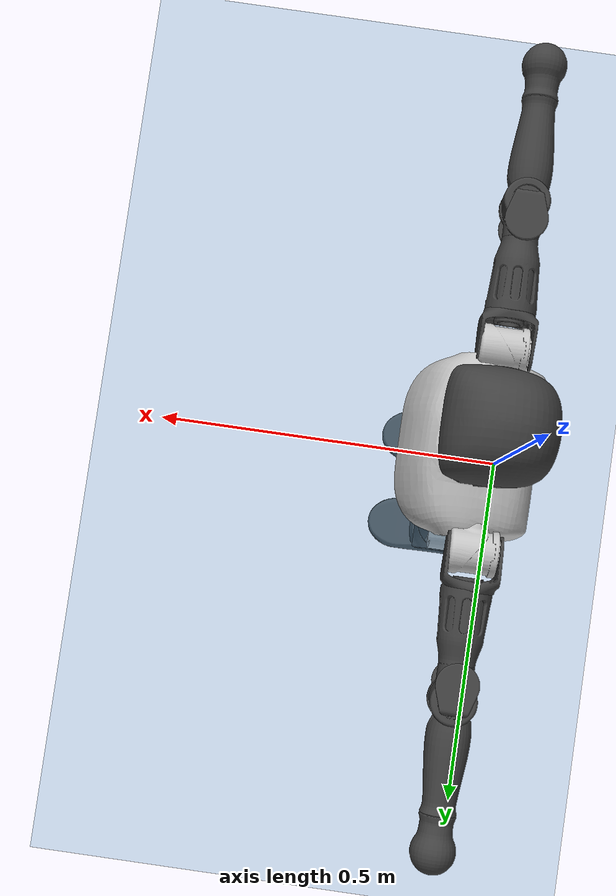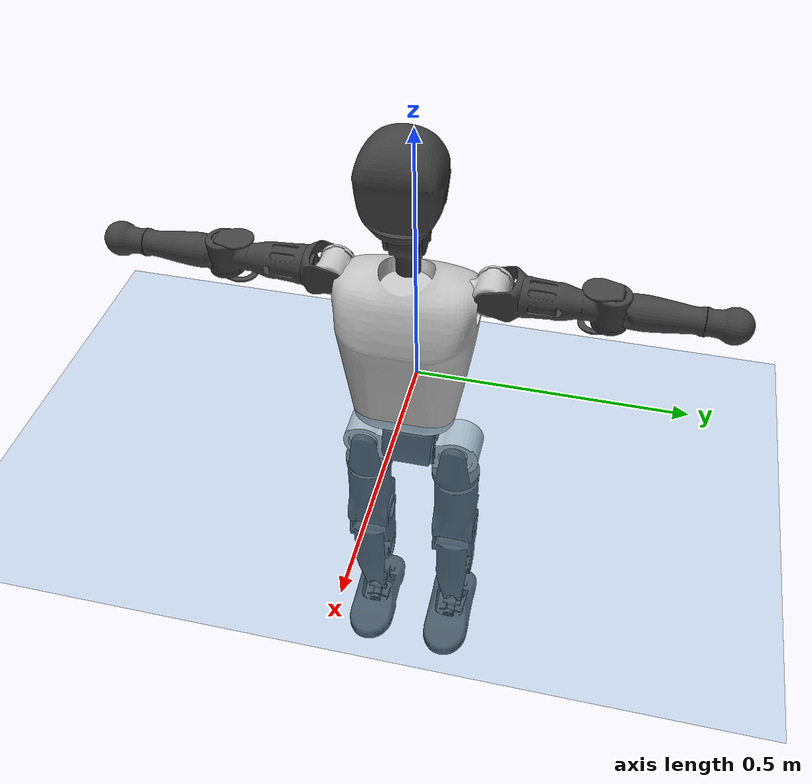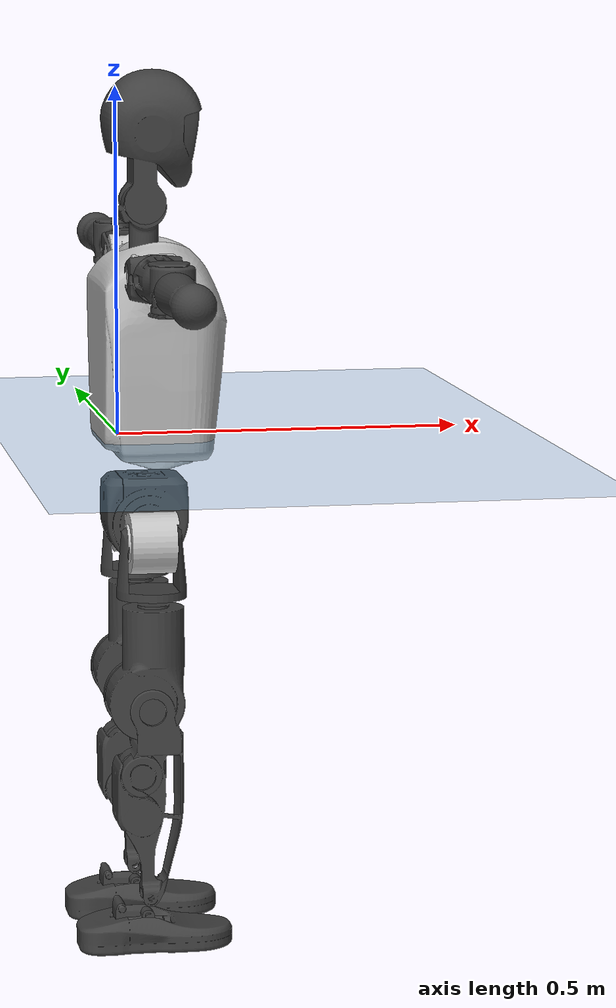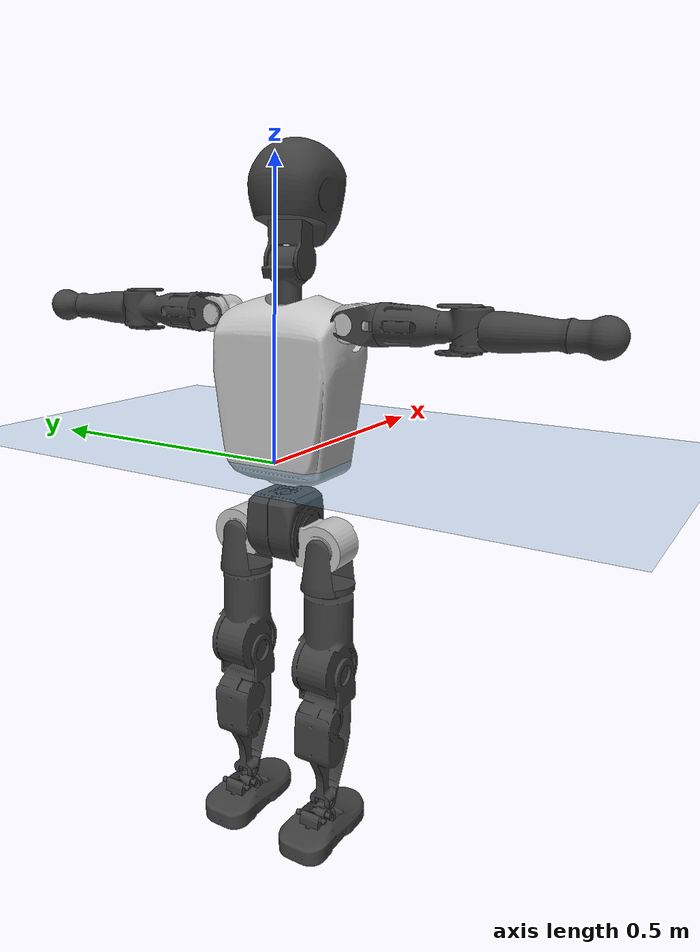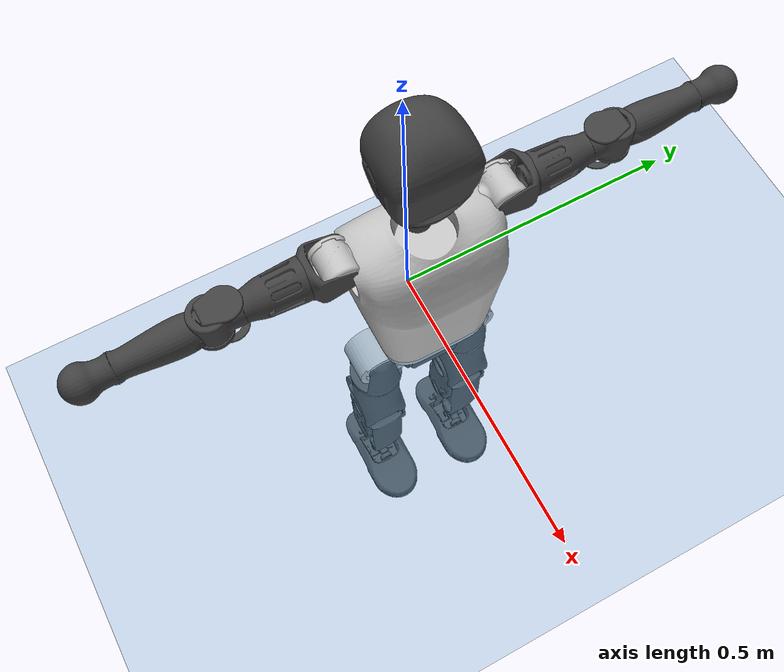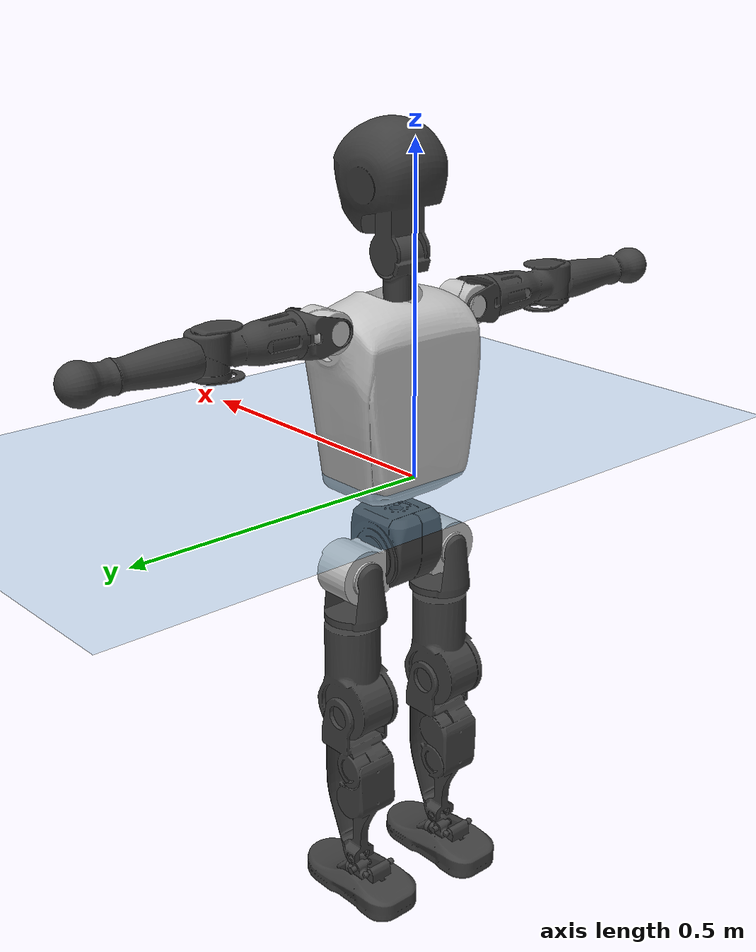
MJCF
<mujoco model="T1">
  <compiler angle="radian" assetdir="assets" balanceinertia="true" inertiafromgeom="false"/>

  <option timestep="0.005" density="1.2" viscosity="2e-05"/>

  <size nkey="1"/>

  <visual>
    <quality shadowsize="8192"/>
    <map shadowclip="0.5"/>
  </visual>

  <default>
    <default class="/">
      <joint armature="0.01" damping="0.01" frictionloss="0.1"/>
      <geom contype="0" conaffinity="0" group="1" solref="-1000 -80"/>
      <site size="0.01 0.005 0.005" group="5"/>
      <general forcelimited="true" biastype="affine" gainprm="25" biasprm="0 -25 -0.6"/>
      <default class="t1">
        <geom rgba="0.25 0.25 0.25 1"/>
        <default class="visual">
          <geom type="mesh" group="2"/>
        </default>
        <default class="collision">
          <geom group="3"/>
        </default>
        <default class="foot">
          <geom size="0.1115 0.05 0.015" type="box" condim="6" group="4" priority="1" solimp="0.015 1 0.015"/>
        </default>
        <default class="reward_collision_sphere">
          <geom group="5" rgba="1 0 0 1"/>
        </default>
      </default>
    </default>
  </default>

  <asset>
    <texture type="skybox" colorspace="auto" name="//unnamed_texture_0" builtin="gradient" rgb1="0.95 0.95 0.95" rgb2="0.95 0.95 0.95" width="100" height="600"/>
    <texture type="2d" colorspace="auto" name="texplane" builtin="checker" rgb1="0.345 0.575 0.748" rgb2="0.345 0.575 0.748" markrgb="1 1 1" width="512" height="512"/>
    <material name="MatPlane" class="/" texture="texplane" texuniform="true" texrepeat="2 2" specular="0.9"/>
    <mesh name="Trunk" class="/" file="Trunk.stl"/>
    <mesh name="H1" class="/" file="H1.stl"/>
    <mesh name="H2" class="/" file="H2.stl"/>
    <mesh name="AL1" class="/" file="AL1.stl"/>
    <mesh name="AL2" class="/" file="AL2.stl"/>
    <mesh name="AL3" class="/" file="AL3.stl"/>
    <mesh name="left_hand_link" class="/" file="left_hand_link.stl"/>
    <mesh name="AR1" class="/" file="AR1.stl"/>
    <mesh name="AR2" class="/" file="AR2.stl"/>
    <mesh name="AR3" class="/" file="AR3.stl"/>
    <mesh name="right_hand_link" class="/" file="right_hand_link.stl"/>
    <mesh name="Waist" class="/" file="Waist.stl"/>
    <mesh name="Hip_Pitch_Left" class="/" file="Hip_Pitch_Left.stl"/>
    <mesh name="Hip_Roll_Left" class="/" file="Hip_Roll_Left.stl"/>
    <mesh name="Hip_Yaw_Left" class="/" file="Hip_Yaw_Left.stl"/>
    <mesh name="Shank_Left" class="/" file="Shank_Left.stl"/>
    <mesh name="Ankle_Cross_Left" class="/" file="Ankle_Cross_Left.stl"/>
    <mesh name="left_foot_link" class="/" file="left_foot_link.stl"/>
    <mesh name="Hip_Pitch_Right" class="/" file="Hip_Pitch_Right.stl"/>
    <mesh name="Hip_Roll_Right" class="/" file="Hip_Roll_Right.stl"/>
    <mesh name="Hip_Yaw_Right" class="/" file="Hip_Yaw_Right.stl"/>
    <mesh name="Shank_Right" class="/" file="Shank_Right.stl"/>
    <mesh name="Ankle_Cross_Right" class="/" file="Ankle_Cross_Right.stl"/>
    <mesh name="right_foot_link" class="/" file="right_foot_link.stl"/>
  </asset>

  <worldbody>
    <geom name="floor" class="/" size="100 100 0.125" type="plane" group="0" material="MatPlane"/>
    <light name="toplight_shadow" class="/" pos="0 0 5" dir="0.0990148 0.0990148 -0.990148" type="directional" ambient="0.04 0.04 0.04" diffuse="0.55 0.55 0.55" specular="0.12 0.12 0.12"/>
    <light name="toplight_fill" class="/" pos="0 0 5" dir="0.0990148 0.0990148 -0.990148" type="directional" castshadow="false" ambient="0.04 0.04 0.04" diffuse="0.3 0.3 0.3" specular="0.08 0.08 0.08"/>
    <body name="trunk" childclass="t1" pos="-0.000726151 -0.000675132 0.00210604" quat="0.999999 -0.00099784 0.000164227 0.000886333">
      <inertial pos="0.0333758 -0.00196725 0.118326" quat="0.999957 -0.000116639 -0.00922692 0.000289007" mass="7.40025" diaginertia="0.0116305 0.030981 0.0936192"/>
      <joint name="//unnamed_joint_0" type="free" armature="0" damping="0" frictionloss="0"/>
      <geom name="//unnamed_geom_1" class="visual" rgba="0.76 0.76 0.76 1" mesh="Trunk"/>
      <geom name="//unnamed_geom_2" class="collision" size="0.0648481 0.0864642 0.129696" pos="0.0394279 0 0.132127" type="box"/>
      <geom name="//unnamed_geom_3" class="reward_collision_sphere" size="0.0994338" pos="0.0394279 0 0.110106"/>
      <geom name="//unnamed_geom_4" class="reward_collision_sphere" size="0.0129696" pos="0.0394279 0.0710375 0"/>
      <geom name="//unnamed_geom_5" class="reward_collision_sphere" size="0.0129696" pos="0.0394279 -0.0710375 0"/>
      <geom name="//unnamed_geom_6" class="reward_collision_sphere" size="0.0129696" pos="0.0394279 0.0894237 0.19819"/>
      <geom name="//unnamed_geom_7" class="reward_collision_sphere" size="0.0129696" pos="0.0394279 -0.0894237 0.19819"/>
      <site name="imu" pos="0.00238489 -0.0038991 0.00151922" size="0.00864642"/>
      <camera name="track" pos="0 -1.67147 0" quat="0.707107 0.707107 0 0" mode="trackcom"/>
      <camera name="ego_camera" pos="0.0801701 0 0.462444" quat="-0.5 -0.5 0.5 0.5"/>
      <body name="H1" pos="0.0405164 -0.00190822 0.264886" quat="1 -5.0148e-05 3.62685e-05 -2.98602e-05">
        <inertial pos="-0.000877138 -0.00161257 0.0657754" quat="0.766801 -0.0124536 0.00144797 0.641763" mass="0.284568" diaginertia="2.92788e-05 9.46052e-05 0.000244107"/>
        <joint name="AAHead_yaw" pos="0 0 0" axis="-0.0110559 0.00462591 0.999928" range="-1.55015 1.59179" armature="0.0084283" damping="0.00654353" frictionloss="0.0835338"/>
        <geom name="//unnamed_geom_8" class="visual" mesh="H1"/>
        <body name="H2" pos="-0.00191939 -0.00253542 0.0685411" quat="0.999999 -0.000111851 0.000653797 0.0011627">
          <inertial pos="0.00582717 0.000911157 0.109231" quat="0.988566 0.101845 -0.0742669 -0.0827594" mass="0.39654" diaginertia="0.00024599 0.000791547 0.00287516"/>
          <joint name="Head_pitch" pos="0 0 0" axis="-0.00245192 -0.999954 0.00931226" stiffness="0.00585851" range="-1.24872 0.301435" armature="0.00995139" damping="0" frictionloss="0.0844331"/>
          <geom name="//unnamed_geom_9" class="visual" mesh="H2"/>
          <geom name="//unnamed_geom_10" class="collision" size="0.0691713" pos="0.00657132 0 0.121116"/>
          <geom name="//unnamed_geom_11" class="reward_collision_sphere" size="0.0778178" pos="0.0131426 0 0.110106"/>
        </body>
      </body>
      <body name="AL1" pos="0.0411011 0.0915058 0.243942" quat="0.999999 0.000327432 0.000991253 0.000517816">
        <inertial pos="-0.000679765 0.0385415 -2.4839e-05" quat="0.500529 0.497971 -0.503195 0.498288" mass="0.340142" diaginertia="0.000172376 0.000509099 0.000457151"/>
        <joint name="Left_Shoulder_Pitch" pos="0 0 0" axis="0.000172101 1 0.000146223" range="-3.25019 1.22059" armature="0.00766156" damping="0.00344368" frictionloss="0.0764306"/>
        <geom name="//unnamed_geom_12" class="visual" rgba="0.76 0.76 0.76 1" mesh="AL1"/>
        <body name="AL2" pos="-0.00141504 0.0430898 0.000329386" quat="1 9.11947e-07 -3.98632e-07 5.80289e-07">
          <inertial pos="0.00273794 0.0296619 0.000343354" quat="0.485151 0.512763 -0.487202 0.514137" mass="0.106789" diaginertia="5.04884e-05 0.00014413 0.000303019"/>
          <joint name="Left_Shoulder_Roll" pos="0 0 0" axis="-0.999969 -0.00781551 0.00130951" stiffness="0.00831008" range="-1.57753 1.73483" armature="0.00883732" damping="0" frictionloss="0.0873798"/>
          <geom name="//unnamed_geom_13" class="visual" mesh="AL2"/>
          <body name="AL3" pos="0.00239511 0.0508555 0.00015588" quat="1 -6.52349e-05 2.82977e-05 0.000172567">
            <inertial pos="0.00190597 0.0711311 -0.000263224" quat="0.704951 0.709128 0.0133627 0.00166434" mass="0.632528" diaginertia="0.00149043 0.00519098 0.00098583"/>
            <joint name="Left_Elbow_Pitch" pos="0 0 0" axis="-0.00648284 -0.999979 0.000687836" stiffness="0.00987686" range="-2.28195 2.29445" armature="0.00933771" damping="0.0256876" frictionloss="0.0784322"/>
            <geom name="//unnamed_geom_14" class="visual" mesh="AL3"/>
            <geom name="//unnamed_geom_15" class="collision" size="0.0259393 0.0648481" pos="0 0.0417868 0" quat="0.707105 0.707108 0 0" type="cylinder"/>
            <geom name="//unnamed_geom_16" class="reward_collision_sphere" size="0.0311271"/>
            <body name="left_hand_link" pos="-0.00130712 0.124715 -0.000240852" quat="0.999999 -0.000984093 0.000860634 -0.000419408">
              <inertial pos="0.000418853 0.0927542 0.00314266" quat="0.707903 0.706309 -9.80976e-05 -0.000220315" mass="0.214706" diaginertia="0.0010207 0.0033994 0.000358291"/>
              <joint name="Left_Elbow_Yaw" pos="0 0 0" axis="-0.0076739 0.00465254 0.99996" range="-2.4977 -0.00917455" armature="0.00849144" damping="0.00904712" frictionloss="0.075611"/>
              <geom name="//unnamed_geom_17" class="visual" mesh="left_hand_link"/>
              <geom name="//unnamed_geom_18" class="collision" size="0.0259393 0.0756561" pos="0 0.108646 0" quat="0.707105 0.707108 0 0" type="cylinder"/>
              <geom name="//unnamed_geom_19" class="reward_collision_sphere" size="0.0432321"/>
              <geom name="//unnamed_geom_20" class="reward_collision_sphere" size="0.0302625" pos="0 0.0919309 0"/>
              <geom name="//unnamed_geom_21" class="reward_collision_sphere" size="0.0302625" pos="0 0.179683 0"/>
            </body>
          </body>
        </body>
      </body>
      <body name="AR1" pos="0.0366622 -0.0853341 0.23964" quat="1 -5.6732e-05 0.000439367 5.84272e-05">
        <inertial pos="-0.000426773 -0.0351387 0.00176515" quat="0.500767 0.498136 -0.501069 0.500022" mass="0.350076" diaginertia="0.000159995 0.000503745 0.000465244"/>
        <joint name="Right_Shoulder_Pitch" pos="0 0 0" axis="0.000983226 -0.999997 0.00242385" range="-1.22654 3.31943" armature="0.00808528" damping="0.0098906" frictionloss="0.0782186"/>
        <geom name="//unnamed_geom_22" class="visual" rgba="0.76 0.76 0.76 1" mesh="AR1"/>
        <body name="AR2" pos="-0.00250559 -0.040932 -0.000809372" quat="0.999999 -0.00110171 0.000250509 -7.2272e-05">
          <inertial pos="0.00510542 -0.0310895 0.00299549" quat="0.511725 0.488532 -0.511311 0.487888" mass="0.103675" diaginertia="4.8808e-05 0.000141107 0.000294285"/>
          <joint name="Right_Shoulder_Roll" pos="0 0 0" axis="-0.999827 -0.0180226 0.00467757" range="-1.68588 1.55471" armature="0.00803331" damping="0.0170566" frictionloss="0.0907385"/>
          <geom name="//unnamed_geom_23" class="visual" mesh="AR2"/>
          <body name="AR3" pos="-0.00053962 -0.0523354 0.000865749" quat="1 -3.38585e-06 -4.7284e-07 -3.44535e-07">
            <inertial pos="-0.00051941 -0.0710932 0.00116433" quat="0.707652 0.706508 -0.000397207 0.00869953" mass="0.673716" diaginertia="0.00162578 0.00509053 0.00101953"/>
            <joint name="Right_Elbow_Pitch" pos="0 0 0" axis="0.00201965 0.999895 -0.0143265" stiffness="0.00917211" range="-2.22275 2.2354" armature="0.00855122" damping="0.0136357" frictionloss="0.0859591"/>
            <geom name="//unnamed_geom_24" class="visual" mesh="AR3"/>
            <geom name="//unnamed_geom_25" class="collision" size="0.0259393 0.0648481" pos="0 -0.0417868 0" quat="0.707105 0.707108 0 0" type="cylinder"/>
            <geom name="//unnamed_geom_26" class="reward_collision_sphere" size="0.0311271"/>
            <body name="right_hand_link" pos="-0.0014898 -0.122168 -0.00224826" quat="0.999999 0.000227942 -0.00112294 -0.000787773">
              <inertial pos="-0.00102057 -0.0928799 -0.000701811" quat="0.70644 0.707773 0.000305769 9.98304e-05" mass="0.206672" diaginertia="0.00103578 0.00335395 0.000343155"/>
              <joint name="Right_Elbow_Yaw" pos="0 0 0" axis="0.0062436 0.00210031 0.999978" range="0.015581 2.41944" armature="0.00885268" damping="0" frictionloss="0.0954613"/>
              <geom name="//unnamed_geom_27" class="visual" mesh="right_hand_link"/>
              <geom name="//unnamed_geom_28" class="collision" size="0.0259393 0.0756561" pos="0 -0.108646 0" quat="0.707105 0.707108 0 0" type="cylinder"/>
              <geom name="//unnamed_geom_29" class="reward_collision_sphere" size="0.0432321"/>
              <geom name="//unnamed_geom_30" class="reward_collision_sphere" size="0.0302625" pos="0 -0.0919309 0"/>
              <geom name="//unnamed_geom_31" class="reward_collision_sphere" size="0.0302625" pos="0 -0.179683 0"/>
            </body>
          </body>
        </body>
      </body>
      <body name="Waist" pos="0.0394 0.00229603 -0.127886" quat="0.999999 -0.00081854 -0.000964096 0.00105306">
        <inertial pos="0.00323047 0.00136782 0.00832841" quat="0.98368 0.000285516 -0.179911 0.00231685" mass="1.56604" diaginertia="0.000645222 0.00203462 0.00767807"/>
        <joint name="Waist" pos="0 0 0" axis="-0.00313631 -0.00399034 0.999987" stiffness="0.00191809" range="-1.5186 1.51989" armature="0.00744975" damping="0.00601795" frictionloss="0.0899603"/>
        <geom name="//unnamed_geom_32" class="visual" mesh="Waist"/>
        <body name="Hip_Pitch_Left" pos="0.00107026 0.0900062 0.00182493" quat="1 -5.44492e-05 -0.000789002 0.00039302">
          <inertial pos="-0.00112779 -0.00676227 -0.0190451" quat="0.975891 0.217802 0.0134111 0.00444349" mass="0.689791" diaginertia="0.000222289 0.00058556 0.00203418"/>
          <joint name="Left_Hip_Pitch" pos="0 0 0" axis="-0.00211558 0.99996 -0.00871048" stiffness="0.00535826" range="-1.84772 1.55547" armature="0.00795986" damping="0.0121247" frictionloss="0.0826467"/>
          <geom name="//unnamed_geom_33" class="visual" rgba="0.76 0.76 0.76 1" mesh="Hip_Pitch_Left"/>
          <body name="Hip_Roll_Left" pos="-0.00060346 -0.00322264 -0.0205021" quat="0.999999 0.000294556 0.000467237 -0.00109825">
            <inertial pos="0.00285698 -0.00292966 -0.0587927" quat="0.707366 -0.00592685 -0.00582069 0.706799" mass="0.248783" diaginertia="0.000215919 0.000633724 0.000866374"/>
            <joint name="Left_Hip_Roll" pos="0 0 0" axis="-0.999921 0.00918418 0.00862474" range="-1.56889 0.183964" armature="0.00939411" damping="0.0142092" frictionloss="0.0855999"/>
            <geom name="//unnamed_geom_34" class="visual" mesh="Hip_Roll_Left"/>
            <geom name="//unnamed_geom_35" class="reward_collision_sphere" size="0.0475553"/>
            <body name="Hip_Yaw_Left" pos="0.00261452 0.0028802 -0.0881657" quat="1 3.21288e-05 1.41291e-05 2.59481e-05">
              <inertial pos="-0.00434958 -0.00205845 -0.0984851" quat="0.698568 -0.0274272 -0.0220669 0.714678" mass="1.38487" diaginertia="0.00310222 0.0101505 0.00419068"/>
              <joint name="Left_Hip_Yaw" pos="0 0 0" axis="0.004343 0.00980257 -0.999943" stiffness="0.00879852" range="-0.986947 1.02545" armature="0.00847409" damping="0" frictionloss="0.095733"/>
              <geom name="//unnamed_geom_36" class="visual" mesh="Hip_Yaw_Left"/>
              <geom name="//unnamed_geom_37" class="collision" size="0.0432321 0.0691713" type="cylinder"/>
              <body name="Shank_Left" pos="-0.0110892 0.000153674 -0.150497" quat="1 0.000569347 -0.000458651 -9.08435e-05">
                <inertial pos="-0.00452872 -0.00198383 -0.134166" quat="0.997625 0.00155714 -0.0237247 0.0646456" mass="1.07232" diaginertia="0.00413301 0.0142029 0.00294544"/>
                <joint name="Left_Knee_Pitch" pos="0 0 0" axis="0.000793562 0.999836 0.0180774" range="0.0203951 2.3263" armature="0.00938231" damping="0" frictionloss="0.0858097"/>
                <geom name="//unnamed_geom_38" class="visual" mesh="Shank_Left"/>
                <geom name="//unnamed_geom_39" class="collision" size="0.0432321 0.0648481" pos="0 0 -0.132127" type="cylinder"/>
                <geom name="//unnamed_geom_40" class="reward_collision_sphere" size="0.0562017"/>
                <body name="Ankle_Cross_Left" pos="0.00229088 -0.00191441 -0.309224" quat="0.999999 -0.00123 0.000751931 0.000239315">
                  <inertial pos="-0.00270619 -0.000834938 -0.00628446" quat="0.443966 0.54588 0.556621 0.441681" mass="0.0469844" diaginertia="3.70995e-06 1.0744e-05 1.88137e-05"/>
                  <joint name="Left_Ankle_Pitch" pos="0 0 0" axis="-0.00500379 0.999986 -0.00189205" range="-0.853855 0.338019" armature="0.00968271" damping="0.0179909" frictionloss="0.0968803"/>
                  <geom name="//unnamed_geom_41" class="visual" mesh="Ankle_Cross_Left"/>
                  <body name="left_foot_link" pos="-0.0027472 -0.00301412 -0.0135273" quat="1 0.00015053 -5.14237e-05 0.000337106">
                    <inertial pos="-0.00248413 0.00234942 -0.0102253" quat="-0.00382815 0.616453 -5.33109e-06 0.787382" mass="0.428983" diaginertia="0.000310484 0.000934904 0.00337456"/>
                    <joint name="Left_Ankle_Roll" pos="0 0 0" axis="-0.999993 -0.00206324 0.00296424" range="-0.455855 0.420572" armature="0.0087499" damping="0.00906823" frictionloss="0.077074"/>
                    <geom name="//unnamed_geom_42" class="visual" mesh="left_foot_link"/>
                    <geom name="left_foot" class="foot" size="0.103647 0.0455674 0.0118489" pos="0.00657132 0 -0.0165159"/>
                    <geom name="//unnamed_geom_44" class="reward_collision_sphere" size="0.0449614" pos="0.00657132 0 -0.0165159"/>
                    <geom name="//unnamed_geom_45" class="reward_collision_sphere" size="0.0259393" pos="0.0624275 -0.0192219 -0.0165159"/>
                    <geom name="//unnamed_geom_46" class="reward_collision_sphere" size="0.0259393" pos="-0.0459992 -0.0192219 -0.0165159"/>
                    <site name="left_foot" class="foot" pos="0.00657132 0 -0.0165159" size="0.00864642"/>
                  </body>
                </body>
              </body>
            </body>
          </body>
        </body>
        <body name="Hip_Pitch_Right" pos="-0.00163515 -0.0894163 0.000503335" quat="1 5.5487e-05 0.000406436 -9.16297e-05">
          <inertial pos="-0.00256542 0.00662682 -0.0223747" quat="0.973688 -0.22756 0.0102132 -0.0065397" mass="0.648202" diaginertia="0.000225835 0.000626997 0.0019884"/>
          <joint name="Right_Hip_Pitch" pos="0 0 0" axis="-0.000592089 -1 0.000356129" range="-1.58294 1.74746" armature="0.00971742" damping="0.00771953" frictionloss="0.0838169"/>
          <geom name="//unnamed_geom_47" class="visual" rgba="0.76 0.76 0.76 1" mesh="Hip_Pitch_Right"/>
          <body name="Hip_Roll_Right" pos="0.00107976 -0.00194873 -0.0215023" quat="1 0.000192939 0.000892529 0.000398708">
            <inertial pos="0.000234835 0.00224212 -0.0591529" quat="0.710394 -0.0124398 -0.00572658 0.703671" mass="0.250928" diaginertia="0.000216506 0.000628488 0.000848163"/>
            <joint name="Right_Hip_Roll" pos="0 0 0" axis="-0.999843 0.00645469 -0.0164799" stiffness="0.0228237" range="-0.228222 1.57179" armature="0.00743625" damping="0.00773015" frictionloss="0.0847406"/>
            <geom name="//unnamed_geom_48" class="visual" mesh="Hip_Roll_Right"/>
            <geom name="//unnamed_geom_49" class="reward_collision_sphere" size="0.0475553"/>
            <body name="Hip_Yaw_Right" pos="-0.000843217 -0.00202445 -0.0906733" quat="1 -0.000110001 6.14505e-05 -2.81057e-05">
              <inertial pos="-0.00625093 -0.000664952 -0.0970749" quat="0.716632 -0.0361931 -0.0330005 0.69573" mass="1.44467" diaginertia="0.00318131 0.0105774 0.00430115"/>
              <joint name="Right_Hip_Yaw" pos="0 0 0" axis="-0.0118655 0.00230908 -0.999927" range="-0.993677 0.953438" armature="0.00863462" damping="0" frictionloss="0.0848977"/>
              <geom name="//unnamed_geom_50" class="visual" mesh="Hip_Yaw_Right"/>
              <geom name="//unnamed_geom_51" class="collision" size="0.0432321 0.0691713" type="cylinder"/>
              <body name="Shank_Right" pos="-0.00742819 0.00092622 -0.145438" quat="1 -0.0004664 0.000393497 0.000402909">
                <inertial pos="-0.0057763 0.00196048 -0.137849" quat="0.999138 0.0012984 -0.0275428 -0.031016" mass="1.11597" diaginertia="0.00426065 0.0141821 0.00312424"/>
                <joint name="Right_Knee_Pitch" pos="0 0 0" axis="0.00402656 -0.999992 0.000219595" range="-2.32191 0.0235281" armature="0.00955946" damping="0" frictionloss="0.0923514"/>
                <geom name="//unnamed_geom_52" class="visual" mesh="Shank_Right"/>
                <geom name="//unnamed_geom_53" class="collision" size="0.0432321 0.0648481" pos="0 0 -0.132127" type="cylinder"/>
                <geom name="//unnamed_geom_54" class="reward_collision_sphere" size="0.0562017"/>
                <body name="Ankle_Cross_Right" pos="-0.00311667 0.000670714 -0.309038" quat="1 -6.83604e-05 0.000211907 -4.12865e-05">
                  <inertial pos="-0.00421724 0.000565284 -0.00962283" quat="0.444124 0.55362 0.547084 0.443801" mass="0.0471083" diaginertia="3.58155e-06 1.05582e-05 1.79205e-05"/>
                  <joint name="Right_Ankle_Pitch" pos="0 0 0" axis="0.00473637 -0.999921 0.0116666" stiffness="0.00825414" range="-0.404927 0.850149" armature="0.00884098" damping="0.0151509" frictionloss="0.0875177"/>
                  <geom name="//unnamed_geom_55" class="visual" mesh="Ankle_Cross_Right"/>
                  <body name="right_foot_link" pos="0.000769802 -0.00121055 -0.015137" quat="1 -0.000587034 -3.77008e-05 -0.000226571">
                    <inertial pos="-0.00151297 -0.00117394 -0.0104307" quat="-0.00751235 0.628472 -0.00170689 0.777794" mass="0.441168" diaginertia="0.000331844 0.000944467 0.00341025"/>
                    <joint name="Right_Ankle_Roll" pos="0 0 0" axis="-0.999999 0.000142441 0.00153129" stiffness="0.00578912" range="-0.389468 0.3852" armature="0.00964679" damping="0.0110915" frictionloss="0.0948214"/>
                    <geom name="//unnamed_geom_56" class="visual" mesh="right_foot_link"/>
                    <geom name="right_foot" class="foot" size="0.0877908 0.0439947 0.012805" pos="0.00657132 0 -0.0165159"/>
                    <geom name="//unnamed_geom_58" class="reward_collision_sphere" size="0.0345857"/>
                    <geom name="//unnamed_geom_59" class="reward_collision_sphere" size="0.0259393" pos="0.00657132 0 -0.0165159"/>
                    <geom name="//unnamed_geom_60" class="reward_collision_sphere" size="0.0259393" pos="0.0624275 0.0192219 -0.0165159"/>
                    <geom name="//unnamed_geom_61" class="reward_collision_sphere" size="0.0259393" pos="-0.0459992 0.0192219 -0.0165159"/>
                    <site name="right_foot" class="foot" pos="0.00657132 0 -0.0165159" size="0.00864642"/>
                  </body>
                </body>
              </body>
            </body>
          </body>
        </body>
      </body>
    </body>
  </worldbody>

  <contact>
    <pair class="/" geom1="floor" geom2="left_foot" name="//unnamed_contact_0"/>
    <pair class="/" geom1="floor" geom2="right_foot" name="//unnamed_contact_1"/>
  </contact>

  <actuator>
    <general name="AAHead_yaw" class="/" joint="AAHead_yaw" forcerange="-5.4916 5.4916" gainprm="21.9425" biasprm="0 -21.9425 -0.489952"/>
    <general name="Head_pitch" class="/" joint="Head_pitch" forcerange="-6.52427 6.52427" gainprm="21.9425" biasprm="0 -21.9425 -0.489952"/>
    <general name="Left_Shoulder_Pitch" class="/" joint="Left_Shoulder_Pitch" forcerange="-15.7417 15.7417" gainprm="21.9425" biasprm="0 -21.9425 -0.489952"/>
    <general name="Left_Shoulder_Roll" class="/" joint="Left_Shoulder_Roll" forcerange="-13.9992 13.9992" gainprm="21.9425" biasprm="0 -21.9425 -0.489952"/>
    <general name="Left_Elbow_Pitch" class="/" joint="Left_Elbow_Pitch" forcerange="-16.1152 16.1152" gainprm="21.9425" biasprm="0 -21.9425 -0.489952"/>
    <general name="Left_Elbow_Yaw" class="/" joint="Left_Elbow_Yaw" forcerange="-15.7533 15.7533" gainprm="21.9425" biasprm="0 -21.9425 -0.489952"/>
    <general name="Right_Shoulder_Pitch" class="/" joint="Right_Shoulder_Pitch" forcerange="-15.5409 15.5409" gainprm="21.9425" biasprm="0 -21.9425 -0.489952"/>
    <general name="Right_Shoulder_Roll" class="/" joint="Right_Shoulder_Roll" forcerange="-13.9514 13.9514" gainprm="21.9425" biasprm="0 -21.9425 -0.489952"/>
    <general name="Right_Elbow_Pitch" class="/" joint="Right_Elbow_Pitch" forcerange="-15.6017 15.6017" gainprm="21.9425" biasprm="0 -21.9425 -0.489952"/>
    <general name="Right_Elbow_Yaw" class="/" joint="Right_Elbow_Yaw" forcerange="-15.5085 15.5085" gainprm="21.9425" biasprm="0 -21.9425 -0.489952"/>
    <general name="Waist" class="/" joint="Waist" forcerange="-26.6756 26.6756" gainprm="21.9425" biasprm="0 -21.9425 -0.489952"/>
    <general name="Left_Hip_Pitch" class="/" joint="Left_Hip_Pitch" forcerange="-34.8296 34.8296" gainprm="21.9425" biasprm="0 -21.9425 -0.489952"/>
    <general name="Left_Hip_Roll" class="/" joint="Left_Hip_Roll" forcerange="-25.856 25.856" gainprm="21.9425" biasprm="0 -21.9425 -0.489952"/>
    <general name="Left_Hip_Yaw" class="/" joint="Left_Hip_Yaw" forcerange="-26.9084 26.9084" gainprm="21.9425" biasprm="0 -21.9425 -0.489952"/>
    <general name="Left_Knee_Pitch" class="/" joint="Left_Knee_Pitch" forcerange="-53.6084 53.6084" gainprm="21.9425" biasprm="0 -21.9425 -0.489952"/>
    <general name="Left_Ankle_Pitch" class="/" joint="Left_Ankle_Pitch" forcerange="-16.8147 16.8147" gainprm="21.9425" biasprm="0 -21.9425 -0.489952"/>
    <general name="Left_Ankle_Roll" class="/" joint="Left_Ankle_Roll" forcerange="-12.8449 12.8449" gainprm="21.9425" biasprm="0 -21.9425 -0.489952"/>
    <general name="Right_Hip_Pitch" class="/" joint="Right_Hip_Pitch" forcerange="-42.5683 42.5683" gainprm="21.9425" biasprm="0 -21.9425 -0.489952"/>
    <general name="Right_Hip_Roll" class="/" joint="Right_Hip_Roll" forcerange="-26.4557 26.4557" gainprm="21.9425" biasprm="0 -21.9425 -0.489952"/>
    <general name="Right_Hip_Yaw" class="/" joint="Right_Hip_Yaw" forcerange="-28.5456 28.5456" gainprm="21.9425" biasprm="0 -21.9425 -0.489952"/>
    <general name="Right_Knee_Pitch" class="/" joint="Right_Knee_Pitch" forcerange="-50.6749 50.6749" gainprm="21.9425" biasprm="0 -21.9425 -0.489952"/>
    <general name="Right_Ankle_Pitch" class="/" joint="Right_Ankle_Pitch" forcerange="-16.8803 16.8803" gainprm="21.9425" biasprm="0 -21.9425 -0.489952"/>
    <general name="Right_Ankle_Roll" class="/" joint="Right_Ankle_Roll" forcerange="-12.9177 12.9177" gainprm="21.9425" biasprm="0 -21.9425 -0.489952"/>
  </actuator>

  <sensor>
    <gyro site="imu" name="imu_angular_velocity"/>
    <velocimeter site="imu" name="imu_linear_velocity"/>
    <framelinvel objtype="site" objname="left_foot" name="left_foot_global_linear_velocity"/>
    <framelinvel objtype="site" objname="right_foot" name="right_foot_global_linear_velocity"/>
  </sensor>

  <keyframe>
    <key name="home" qpos="0 0 0.6385 1 0 0 0 0 0 0 1.4 0 -0.4 0 -1.4 0 0.4 0 -0.4 0 0 0.8 -0.4 0 0.4 0 0 -0.8 0.4 0"/>
  </keyframe>
</mujoco>
